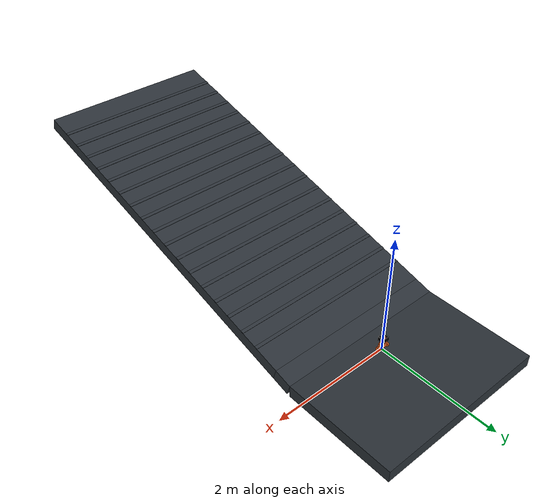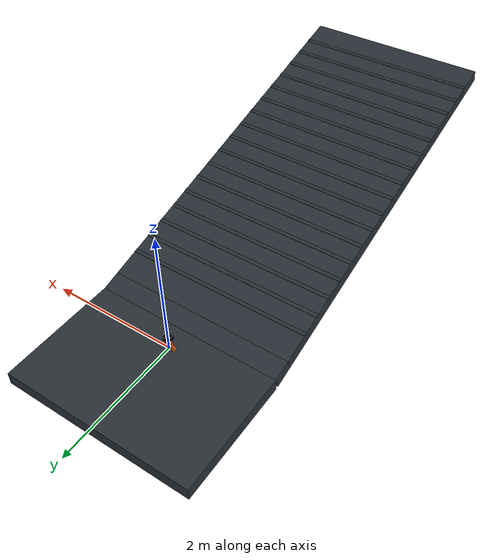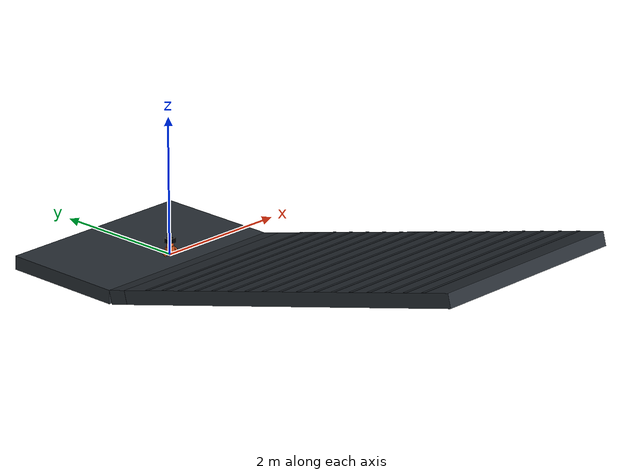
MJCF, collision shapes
<mujoco model="Stage4B rbase_ep_012_train_p15p0">
  <compiler angle="radian" meshdir="../../../../assets/upstream_local" />
  <option timestep="0.001" integrator="implicitfast" gravity="0 0 -9.81" />
  <statistic center="0 0 0.10" extent="0.35" />
  <default>
    <default class="visual">
      <geom contype="0" conaffinity="0" group="2" />
    </default>
    <default class="collision">
      <geom group="3" rgba="0.85 0.35 0.12 0.25" solref="0.005 1" solimp="0.9 0.95 0.001" />
    </default>
  </default>
  <asset>
    <texture name="ground_tex" type="2d" builtin="checker" rgb1="0.22 0.25 0.28" rgb2="0.12 0.14 0.16" width="256" height="256" />
    <material name="ground_mat" texture="ground_tex" texrepeat="4 4" reflectance="0.15" />
    <mesh name="main_frame_mesh" file="main_frame.stl" scale="0.001 0.001 0.001" />
    <mesh name="wheel_base_mesh" file="wheel_base.stl" scale="0.001 0.001 0.001" />
    <mesh name="cover_mesh" file="cover.stl" scale="0.001 0.001 0.001" />
    <mesh name="motor_left_mesh" file="motor_left.stl" scale="0.001 0.001 0.001" />
    <mesh name="motor_right_mesh" file="motor_right.stl" scale="0.001 0.001 0.001" />
    <mesh name="mc33926_mesh" file="mc33926.stl" scale="0.001 0.001 0.001" />
    <mesh name="wheel_mesh" file="wheel.stl" scale="0.001 0.001 0.001" />
    <mesh name="adapter_left_mesh" file="adapter_left.stl" scale="0.001 0.001 0.001" />
    <mesh name="adapter_right_mesh" file="adapter_right.stl" scale="0.001 0.001 0.001" />
  </asset>
  <worldbody>
    <light pos="0 -0.5 0.8" dir="0 0.6 -1" diffuse="0.8 0.8 0.8" />
    <geom name="terrain_flat" type="box" pos="0 0.575 -0.1" size="1.5 0.925 0.1" material="ground_mat" friction="0.12 0.005 0.0001" condim="3" />
    <geom name="terrain_transition" type="box" pos="0 -0.520770778454 -0.0577697258635" euler="-0.261799387799 0 0" size="1.5 0.15 0.1" material="ground_mat" friction="0.12 0.005 0.0001" condim="3" />
    <geom name="terrain_constant_grade" type="box" pos="0 -3.56343713126 0.757510266209" euler="-0.261799387799 0 0" size="1.5 3 0.1" material="ground_mat" friction="0.12 0.005 0.0001" condim="3" />
    <geom name="terrain_rough_00" type="box" pos="0 -1.07366791258 0.197012061306" euler="-0.261799387799 0 0" size="1.5 0.0275 0.003" material="ground_mat" friction="0.12 0.005 0.0001" condim="3" />
    <geom name="terrain_rough_01" type="box" pos="0 -1.38276417699 0.279834155739" euler="-0.261799387799 0 0" size="1.5 0.0275 0.003" material="ground_mat" friction="0.12 0.005 0.0001" condim="3" />
    <geom name="terrain_rough_02" type="box" pos="0 -1.69186044141 0.362656250171" euler="-0.261799387799 0 0" size="1.5 0.0275 0.003" material="ground_mat" friction="0.12 0.005 0.0001" condim="3" />
    <geom name="terrain_rough_03" type="box" pos="0 -2.00095670582 0.445478344604" euler="-0.261799387799 0 0" size="1.5 0.0275 0.003" material="ground_mat" friction="0.12 0.005 0.0001" condim="3" />
    <geom name="terrain_rough_04" type="box" pos="0 -2.31005297023 0.528300439037" euler="-0.261799387799 0 0" size="1.5 0.0275 0.003" material="ground_mat" friction="0.12 0.005 0.0001" condim="3" />
    <geom name="terrain_rough_05" type="box" pos="0 -2.61914923464 0.61112253347" euler="-0.261799387799 0 0" size="1.5 0.0275 0.003" material="ground_mat" friction="0.12 0.005 0.0001" condim="3" />
    <geom name="terrain_rough_06" type="box" pos="0 -2.92824549906 0.693944627903" euler="-0.261799387799 0 0" size="1.5 0.0275 0.003" material="ground_mat" friction="0.12 0.005 0.0001" condim="3" />
    <geom name="terrain_rough_07" type="box" pos="0 -3.23734176347 0.776766722335" euler="-0.261799387799 0 0" size="1.5 0.0275 0.003" material="ground_mat" friction="0.12 0.005 0.0001" condim="3" />
    <geom name="terrain_rough_08" type="box" pos="0 -3.54643802788 0.859588816768" euler="-0.261799387799 0 0" size="1.5 0.0275 0.003" material="ground_mat" friction="0.12 0.005 0.0001" condim="3" />
    <geom name="terrain_rough_09" type="box" pos="0 -3.85553429229 0.942410911201" euler="-0.261799387799 0 0" size="1.5 0.0275 0.003" material="ground_mat" friction="0.12 0.005 0.0001" condim="3" />
    <geom name="terrain_rough_10" type="box" pos="0 -4.16463055671 1.02523300563" euler="-0.261799387799 0 0" size="1.5 0.0275 0.003" material="ground_mat" friction="0.12 0.005 0.0001" condim="3" />
    <geom name="terrain_rough_11" type="box" pos="0 -4.47372682112 1.10805510007" euler="-0.261799387799 0 0" size="1.5 0.0275 0.003" material="ground_mat" friction="0.12 0.005 0.0001" condim="3" />
    <geom name="terrain_rough_12" type="box" pos="0 -4.78282308553 1.1908771945" euler="-0.261799387799 0 0" size="1.5 0.0275 0.003" material="ground_mat" friction="0.12 0.005 0.0001" condim="3" />
    <geom name="terrain_rough_13" type="box" pos="0 -5.09191934994 1.27369928893" euler="-0.261799387799 0 0" size="1.5 0.0275 0.003" material="ground_mat" friction="0.12 0.005 0.0001" condim="3" />
    <geom name="terrain_rough_14" type="box" pos="0 -5.40101561436 1.35652138337" euler="-0.261799387799 0 0" size="1.5 0.0275 0.003" material="ground_mat" friction="0.12 0.005 0.0001" condim="3" />
    <geom name="terrain_rough_15" type="box" pos="0 -5.71011187877 1.4393434778" euler="-0.261799387799 0 0" size="1.5 0.0275 0.003" material="ground_mat" friction="0.12 0.005 0.0001" condim="3" />
    <geom name="terrain_rough_16" type="box" pos="0 -6.01920814318 1.52216557223" euler="-0.261799387799 0 0" size="1.5 0.0275 0.003" material="ground_mat" friction="0.12 0.005 0.0001" condim="3" />
    <body name="chassis" pos="0 0 0.043">
      <freejoint name="root" />
      <inertial pos="0.0001592717873 -0.001394466535 0.03368627387" mass="0.8173706489" fullinertia="0.0009508052638 0.001636345835 0.0009938057434 -1.163464906e-07 -4.840496598e-06 3.454944565e-05" />
      <geom name="main_frame_visual" class="visual" type="mesh" mesh="main_frame_mesh" rgba="0.12 0.42 0.72 1" />
      <geom name="wheel_base_visual" class="visual" type="mesh" mesh="wheel_base_mesh" rgba="0.95 0.50 0.10 1" />
      <geom name="cover_visual" class="visual" type="mesh" mesh="cover_mesh" rgba="0.18 0.72 0.32 0.72" />
      <geom name="motor_left_visual" class="visual" type="mesh" mesh="motor_left_mesh" rgba="0.45 0.47 0.50 1" />
      <geom name="motor_right_visual" class="visual" type="mesh" mesh="motor_right_mesh" rgba="0.45 0.47 0.50 1" />
      <geom name="mc33926_visual" class="visual" type="mesh" mesh="mc33926_mesh" rgba="0.08 0.36 0.18 1" />
      <geom name="battery_1_visual" class="visual" type="box" pos="0 -0.012 0.038" size="0.035 0.007 0.025" rgba="0.15 0.25 0.75 1" />
      <geom name="battery_2_visual" class="visual" type="box" pos="0 0.012 0.038" size="0.035 0.007 0.025" rgba="0.15 0.25 0.75 1" />
      <geom name="electronics_lump_visual" class="visual" type="box" pos="0 -0.024 0.067" size="0.035 0.006 0.0425" rgba="0.10 0.42 0.20 0.65" />
      <geom name="wheel_base_collision" class="collision" type="box" pos="0 0.0005 0.0042" size="0.074 0.0201 0.0198" />
      <geom name="lower_chassis_collision" class="collision" type="box" pos="0.001 -0.0015 0.038" size="0.0595 0.0325 0.038" />
      <geom name="upper_chassis_collision" class="collision" type="capsule" fromto="-0.024 -0.0015 0.096 0.026 -0.0015 0.096" size="0.033" />
      <geom name="basket_floor" class="collision" type="box" pos="0 0 0.137" size="0.055 0.052 0.003" friction="0.024 0.005 0.0001" rgba="0.18 0.30 0.48 0.65" />
      <geom name="basket_front_wall" class="collision" type="box" pos="0 -0.052 0.170" size="0.055 0.003 0.033" friction="0.024 0.005 0.0001" rgba="0 0 0 0" />
      <geom name="basket_rear_wall" class="collision" type="box" pos="0 0.052 0.170" size="0.055 0.003 0.033" friction="0.024 0.005 0.0001" rgba="0 0 0 0" />
      <geom name="basket_left_wall" class="collision" type="box" pos="-0.055 0 0.170" size="0.003 0.052 0.033" friction="0.024 0.005 0.0001" rgba="0 0 0 0" />
      <geom name="basket_right_wall" class="collision" type="box" pos="0.055 0 0.170" size="0.003 0.052 0.033" friction="0.024 0.005 0.0001" rgba="0 0 0 0" />
      <site name="imu_site" type="box" pos="0 0 0.020" quat="1 0 0 0" size="0.004 0.003 0.001" rgba="1 0.15 0.05 1" />
      <body name="left_wheel" pos="-0.0885 0 0">
        <joint name="left_wheel_hinge" type="hinge" axis="1 0 0" damping="0.002" frictionloss="0.002" />
        <inertial pos="0.001407549168 -2.310217342e-08 4.024972882e-05" mass="0.1051" fullinertia="8.559060347e-05 4.760138372e-05 4.763051958e-05 2.677568832e-11 -3.525425309e-08 -1.463149106e-11" />
        <geom name="left_wheel_visual" class="visual" type="mesh" mesh="wheel_mesh" rgba="0.04 0.05 0.06 1" />
        <geom name="left_adapter_visual" class="visual" type="mesh" mesh="adapter_left_mesh" rgba="0.12 0.48 0.82 1" />
        <geom name="left_wheel_collision" class="collision" type="cylinder" size="0.042 0.012" quat="0.7071067812 0 0.7071067812 0" friction="0.12 0.005 0.0001" />
      </body>
      <body name="right_wheel" pos="0.0885 0 0">
        <joint name="right_wheel_hinge" type="hinge" axis="1 0 0" damping="0.002" frictionloss="0.002" />
        <inertial pos="-0.001407437868 -2.310217342e-08 -4.019113045e-05" mass="0.1051" fullinertia="8.559060397e-05 4.760141714e-05 4.763055251e-05 -2.601653908e-11 -3.526339188e-08 1.57007511e-11" />
        <geom name="right_wheel_visual" class="visual" type="mesh" mesh="wheel_mesh" rgba="0.04 0.05 0.06 1" />
        <geom name="right_adapter_visual" class="visual" type="mesh" mesh="adapter_right_mesh" rgba="0.12 0.48 0.82 1" />
        <geom name="right_wheel_collision" class="collision" type="cylinder" size="0.042 0.012" quat="0.7071067812 0 0.7071067812 0" friction="0.12 0.005 0.0001" />
      </body>
    </body>
    <body name="moving_payload" pos="0 0 0.204">
      <freejoint name="moving_payload_free" />
      <inertial pos="0 0 0" mass="0.20" diaginertia="0.0000533333333 0.0001333333333 0.0001333333333" />
      <geom name="moving_payload_collision" class="collision" type="box" size="0.040 0.020 0.020" friction="0.024 0.005 0.0001" rgba="0.78 0.18 0.12 1" />
    </body>
  </worldbody>
  <actuator>
    <motor name="left_wheel_torque" joint="left_wheel_hinge" gear="1" ctrllimited="true" ctrlrange="-0.63 0.63" forcelimited="true" forcerange="-0.63 0.63" />
    <motor name="right_wheel_torque" joint="right_wheel_hinge" gear="1" ctrllimited="true" ctrlrange="-0.63 0.63" forcelimited="true" forcerange="-0.63 0.63" />
  </actuator>
  <sensor>
    <accelerometer name="imu_accelerometer" site="imu_site" />
    <gyro name="imu_gyro" site="imu_site" />
    <jointpos name="left_wheel_angle" joint="left_wheel_hinge" />
    <jointpos name="right_wheel_angle" joint="right_wheel_hinge" />
  </sensor>
  <keyframe>
    <key name="upright" qpos="0 0 0.043 1 0 0 0 0 0 0 0 0.204 1 0 0 0" />
  </keyframe>
</mujoco>
